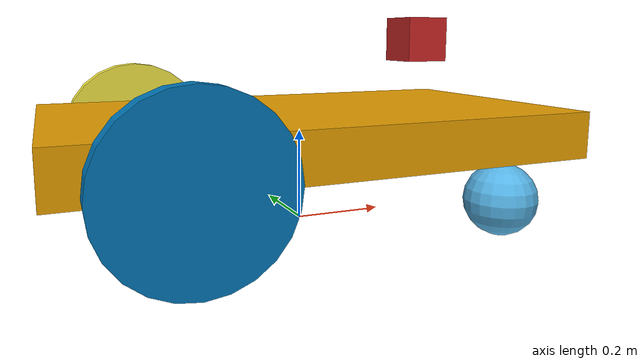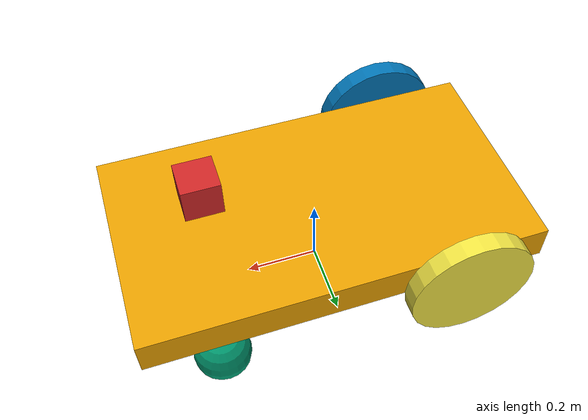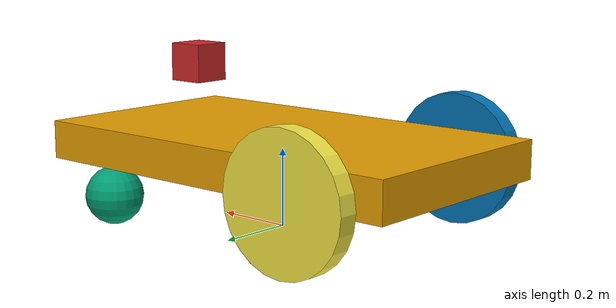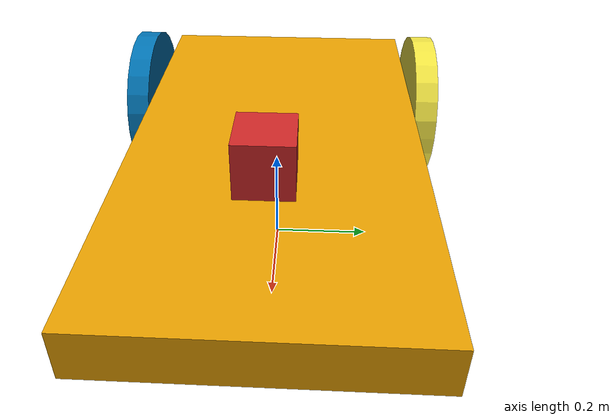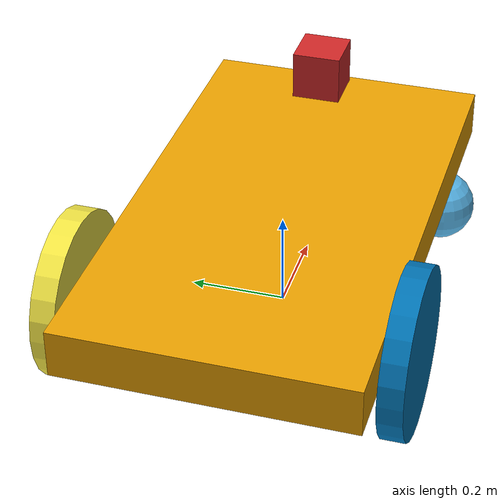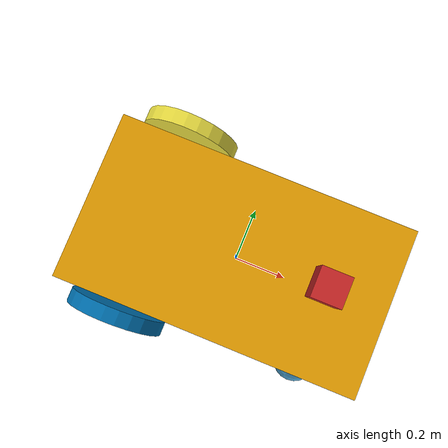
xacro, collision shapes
<?xml version='1.0'?>
<robot name="car" xmlns:xacro="http://ros.org/wiki/xacro" >

   <!-- Base_Link -->

    <link name='chassis'>
    	<inertial>
      	  <mass value="10.7"/>
      	  <origin xyz="0 0 0"/>
      	  <inertia ixx="10.0" ixy="10.0" ixz="10.0" iyy="10.0" iyz="10.0" izz="100.0" />
    	</inertial>

    	<visual>
      	  <origin xyz="0.61 0.33 0.1" rpy="0 0.4 3.14"/>
      	    <geometry>
        	    <mesh filename="package://slam/meshes/ateks2.stl" scale="0.001 0.001 0.001"/>
      	    </geometry>
    	</visual>

    	<collision>
      	   <origin rpy="0 0 0" xyz="0 0 0.2"/>
      	    <geometry>
        	    <box size ="1.08 0.6 0.1"/>
      	    </geometry>
    	</collision>
     </link>

     <gazebo reference="chassis">
    	<material value="Gazebo/DarkGrey "/>
     </gazebo>

  <!-- Caster Wheels -->
    <link name='left_caster_wheel'>
    	<collision>
      	   <origin rpy="0 0 0" xyz="0.33884 -0.27 0.075"/>
      	    <geometry>
      	        <sphere radius ="0.075"/>
      	    </geometry>
    	</collision>
     </link>

     <joint name="left_caster_joint" type="fixed">
	      <origin xyz="0 0 0" rpy="0 0 0"/>
	      <parent link="chassis"/>
	      <child link="left_caster_wheel"/>
	      <axis xyz="0 1 0"/>
     </joint>

    <link name='right_caster_wheel'>
    	<collision>
      	   <origin rpy="0 0 0" xyz="0.33884 0.27 0.075"/>
      	    <geometry>
      	        <sphere radius ="0.075"/>
      	    </geometry>
    	</collision>
     </link>

     <joint name="right_caster_joint" type="fixed">
	      <origin xyz="0 0 0" rpy="0 0 0"/>
	      <parent link="chassis"/>
	      <child link="right_caster_wheel"/>
	      <axis xyz="0 1 0"/>
     </joint>

    <gazebo reference="left_caster_wheel">
      <mu1>0.2</mu1>
      <mu2>0.2</mu2>
    </gazebo>
    <gazebo reference="right_caster_wheel">
      <mu1>0.2</mu1>
      <mu2>0.2</mu2>
    </gazebo>

  <!-- Back Wheels -->

    <link name='left_wheel'>
    	<inertial>
      	  <mass value="1.0"/>
      	  <origin xyz="0.0 0.0 0.0"/>
	  <inertia ixx="1.0" ixy="0" ixz="0" iyy="1.0" iyz="0" izz="1.0" />
    	</inertial>

    	<collision>
      	   <origin rpy="1.57 0 0" xyz="0.0 0.0 0.0"/>
      	    <geometry>
      	        <cylinder radius="0.17" length="0.05"/>
      	    </geometry>
    	</collision>
     </link>

     <joint name="joint_left_wheel_chassis" type="continuous">
    	<axis xyz="0 1 0"/>
    	<origin xyz="-0.31 0.335 0.17" rpy="0 0 0"/>
    	<parent link="chassis"/>
    	<child link="left_wheel"/>
	<dynamics damping="0.5"/>
     </joint>

    <link name='right_wheel'>
    	<inertial>
      	  <mass value="1.0"/>
      	  <origin xyz="0.0 0.0 0.0"/>
	  <inertia ixx="1.0" ixy="0" ixz="0" iyy="1.0" iyz="0" izz="1.0" />
    	</inertial>

    	<collision>
      	   <origin rpy="1.57 0 0" xyz="0.0 0.0 0.0"/>
      	    <geometry>
      	        <cylinder radius="0.17" length="0.05"/>
      	    </geometry>
    	</collision>
     </link>

     <joint name="joint_right_wheel_chassis" type="continuous">
    	<axis xyz="0 1 0"/>
    	<origin xyz="-0.31 -0.335 0.17" rpy="0 0 0"/>
    	<parent link="chassis"/>
    	<child link="right_wheel"/>
	<dynamics damping="0.5"/>
     </joint>

<!-- Camera Port -->
 <link name="kinect">

<visual>
<origin xyz="0 0 0" rpy="0 0 0"/>
<geometry>
<mesh filename="package://slam/meshes/kinect.dae"/>
</geometry>
<material name="red"/>
</visual>

<collision>
<origin xyz="0 0 0" rpy="0 0 0"/>
<geometry>
<box size="0.1 0.1 0.1"/>
</geometry>
</collision>

<inertial>
<mass value="1e-5" />
<origin xyz="0 0 0" rpy="0 0 0"/>
<inertia ixx="1e-6" ixy="0" ixz="0" iyy="1e-6" iyz="0" izz="1e-6" />
</inertial>
</link>

<joint name="joint_kinect_chassis" type="fixed">
<origin xyz=".3 0 .4" rpy="0 0 0"/>
<parent link="chassis"/>
<child link="kinect"/>
</joint>

<link name="kinect_link" />
<joint name="joint_kinect_link" type="fixed">
<origin xyz="0 0 0" rpy="-1.5707 0 -1.5707"/> <!-- To invert the coordinates from image convention (Z is forward) to normal xyz /-->
<parent link="chassis"/>
<child link="kinect_link"/>
<visual>
<origin xyz="0 0 0" rpy="0 0 0"/>
</visual>
</joint>

  <gazebo>
    <plugin name="differential_drive_controller" filename="libgazebo_ros_diff_drive.so">
         <legacyMode>false</legacyMode>
         <alwaysOn>true</alwaysOn>
         <updateRate>10</updateRate>
         <leftJoint>joint_left_wheel_chassis</leftJoint>
         <rightJoint>joint_right_wheel_chassis</rightJoint>
         <wheelSeparation>0.6</wheelSeparation>
         <wheelDiameter>0.34</wheelDiameter>
         <wheelTorque>20</wheelTorque>
         <commandTopic>cmd_vel</commandTopic>
         <odometryTopic>odom</odometryTopic>
         <odometryFrame>odom</odometryFrame>
         <publishTf>1</publishTf>
         <publishWheelTF>True</publishWheelTF>
         <publishWheelJointState>true</publishWheelJointState>
         <robotBaseFrame>chassis</robotBaseFrame>
    </plugin>
  </gazebo>

<!-- Plugin for Kinect sensor -->
	  <gazebo reference="kinect">
	    <sensor type="depth" name="camera1">
		<always_on>1</always_on>
		<visualize>true</visualize>
		<camera>
		    <horizontal_fov>1.047</horizontal_fov>
		    <image>
		        <width>640</width>
		        <height>480</height>
		        <format>R8G8B8</format>
		    </image>
		    <depth_camera>

		    </depth_camera>
		    <clip>
		        <near>0.1</near>
		        <far>100</far>
		    </clip>
		</camera>
		     <plugin name="camera_controller" filename="libgazebo_ros_openni_kinect.so">
		     <alwaysOn>true</alwaysOn>
		        <updateRate>10.0</updateRate>
		        <cameraName>kinect</cameraName>
		        <frameName>kinect_link</frameName>
		    <imageTopicName>rgb/image_raw</imageTopicName>
		    <depthImageTopicName>depth/image_raw</depthImageTopicName>
		    <pointCloudTopicName>depth/points</pointCloudTopicName>
		    <cameraInfoTopicName>rgb/camera_info</cameraInfoTopicName>
		    <depthImageCameraInfoTopicName>depth/camera_info</depthImageCameraInfoTopicName>
		    <pointCloudCutoff>0.4</pointCloudCutoff>
		        <hackBaseline>0.07</hackBaseline>
		        <distortionK1>0.0</distortionK1>
		        <distortionK2>0.0</distortionK2>
		        <distortionK3>0.0</distortionK3>
		        <distortionT1>0.0</distortionT1>
		        <distortionT2>0.0</distortionT2>
		    <CxPrime>0.0</CxPrime>
		    <Cx>0.0</Cx>
		    <Cy>0.0</Cy>
		    <focalLength>0.0</focalLength>
		    </plugin>
	    </sensor>
	  </gazebo>

	<gazebo reference="kinect">
  	<material>Gazebo/red</material>
	</gazebo>

</robot>
